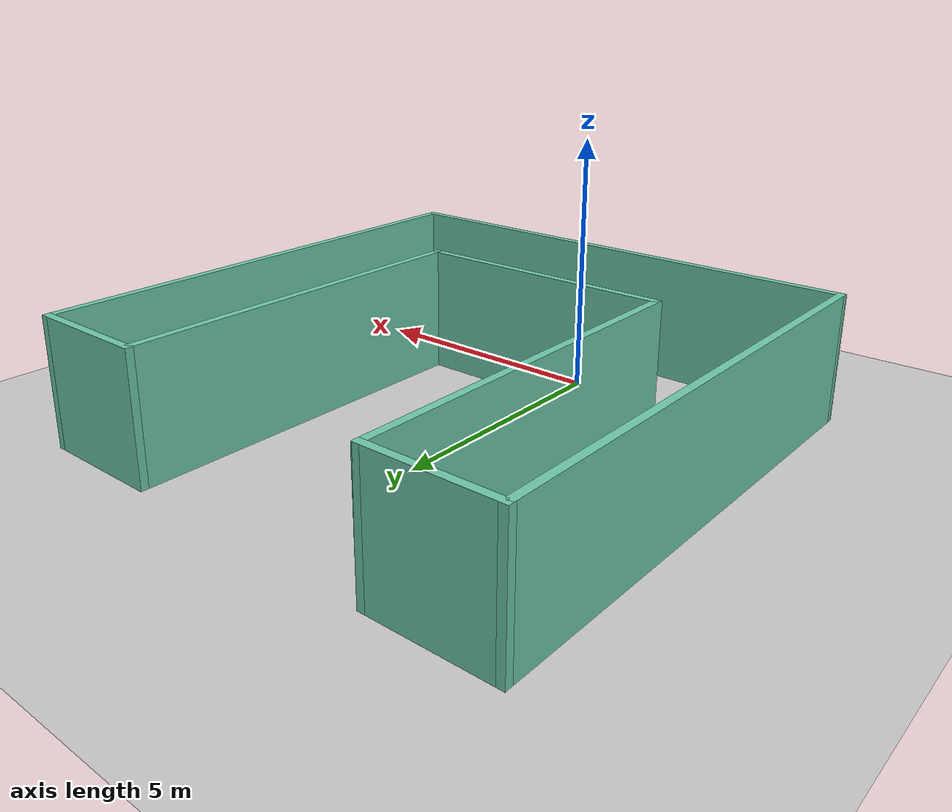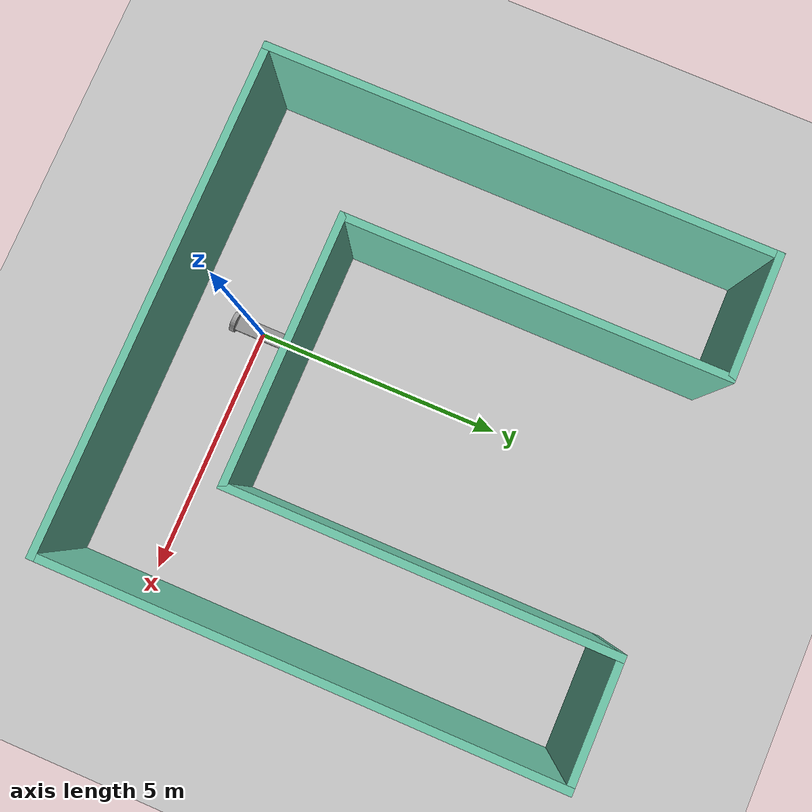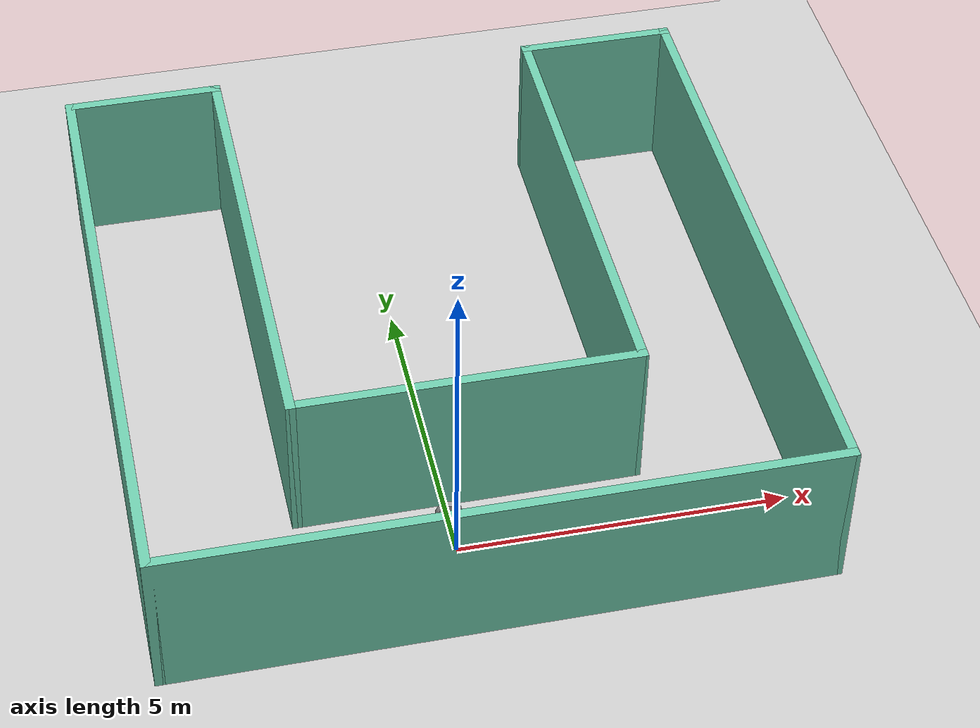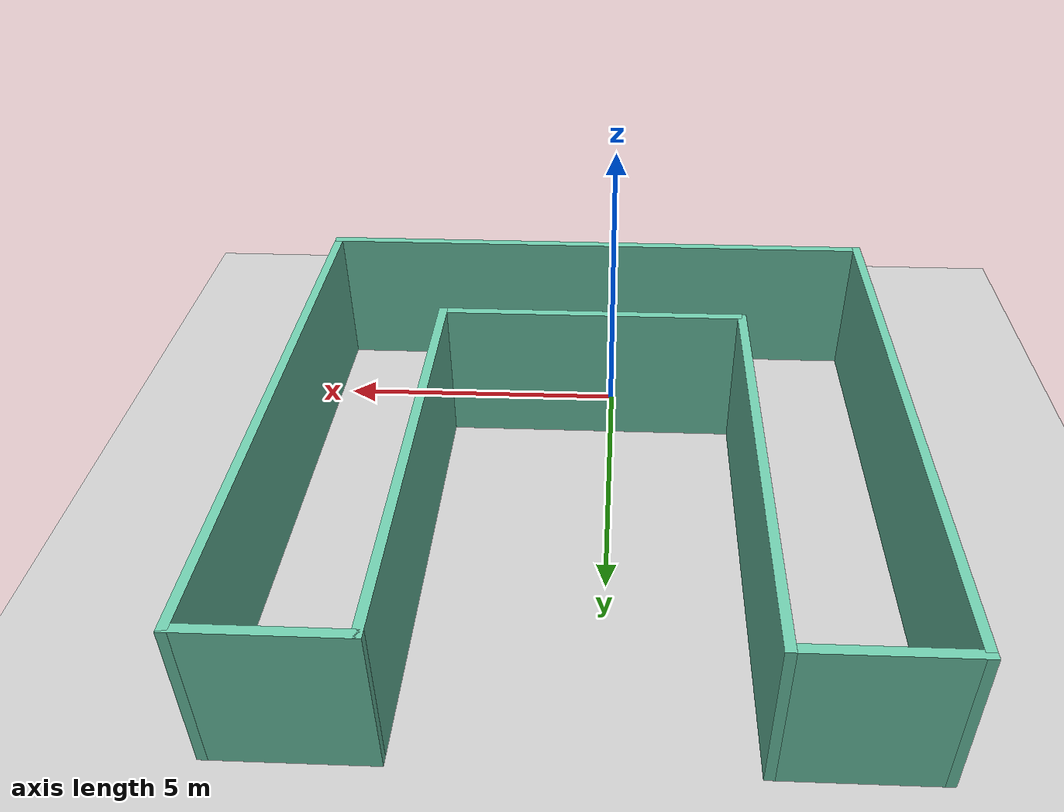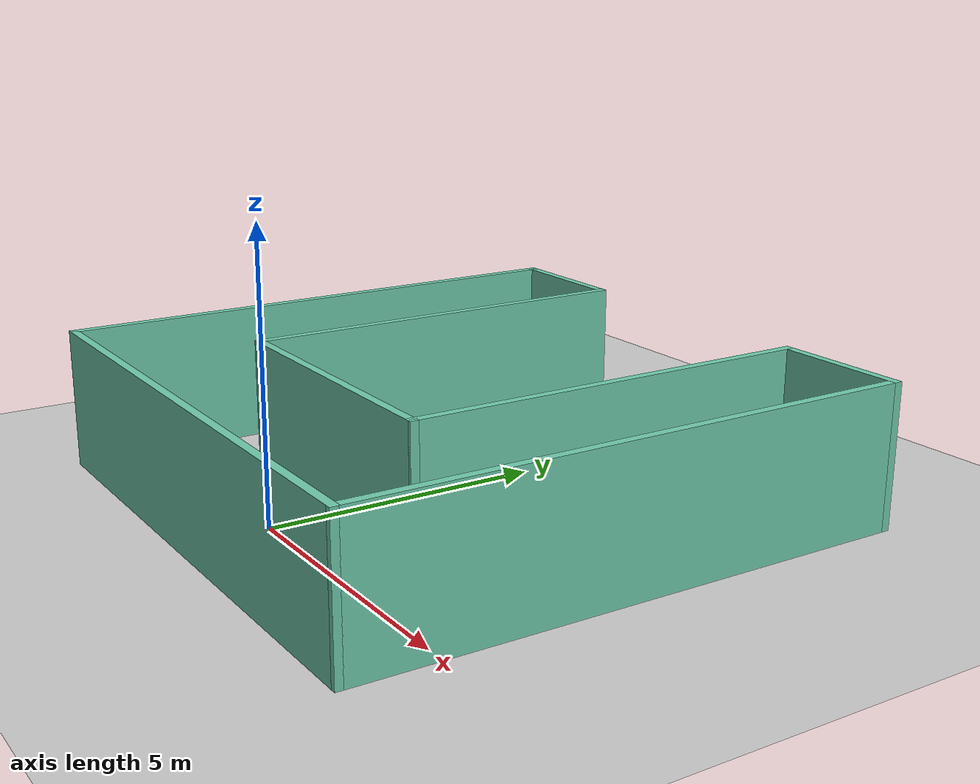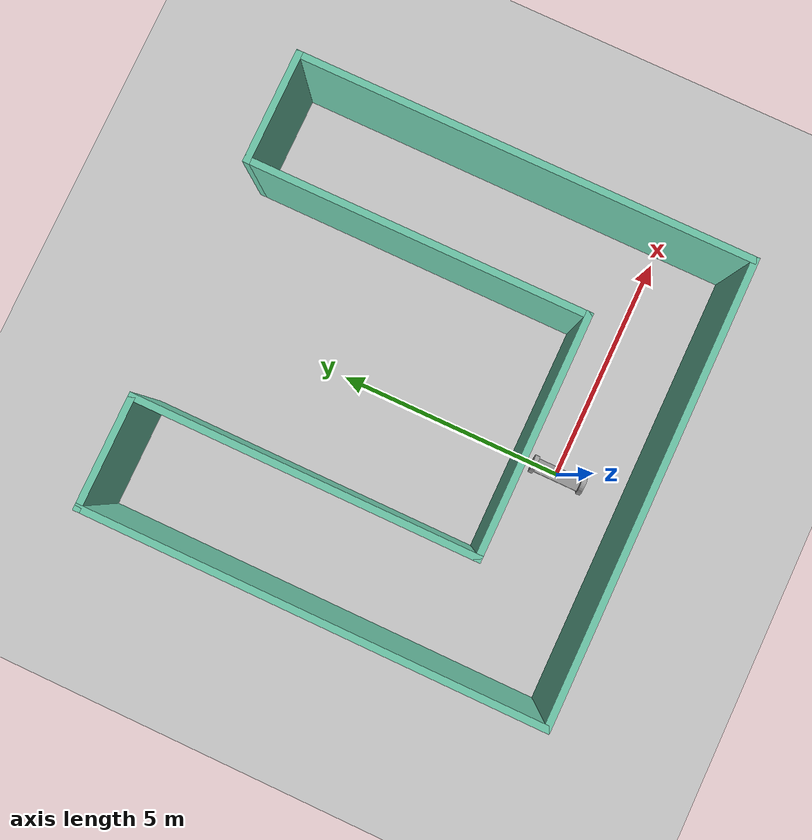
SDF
<sdf version="1.6">
 <world name="default">
  <plugin name="hello" filename="libhello.so"/>
  <light name="sun" type="directional">
   <pose>0 0 10 0 -0 0</pose>
   <diffuse>0.8 0.8 0.8 1</diffuse>
   <specular>0.1 0.1 0.1 1</specular>
   <attenuation>
    <range>1000</range>
    <constant>0.9</constant>
    <linear>0.01</linear>
    <quadratic>0.001</quadratic>
   </attenuation>
   <direction>-0.5 0.5 -1</direction>
  </light>
  <model name="ground_plane">
   <static>1</static>
   <link name="link">
    <collision name="collision">
     <geometry><plane><normal>0 0 1</normal><size>100 100</size></plane></geometry>
     <surface><friction><ode><mu>100</mu><mu2>50</mu2></ode></friction></surface>
    </collision>
    <visual name="visual">
     <cast_shadows>0</cast_shadows>
     <geometry><plane><normal>0 0 1</normal><size>100 100</size></plane></geometry>
     <material>
      <script><uri>file://media/materials/scripts/gazebo.material</uri><name>Gazebo/Grey</name></script>
     </material>
    </visual>
   </link>
  </model>
  <gravity>0 0 -9.8</gravity>
  <magnetic_field>6e-06 2.3e-05 -4.2e-05</magnetic_field>
  <atmosphere type="adiabatic"/>
  <physics name="default_physics" default="0" type="ode">
   <max_step_size>0.001</max_step_size>
   <real_time_factor>1</real_time_factor>
   <real_time_update_rate>1000</real_time_update_rate>
  </physics>
  <scene><ambient>0.4 0.4 0.4 1</ambient><background>0.7 0.7 0.7 1</background><shadows>1</shadows></scene>
  <spherical_coordinates>
   <surface_model>EARTH_WGS84</surface_model>
   <latitude_deg>0</latitude_deg>
   <longitude_deg>0</longitude_deg>
   <elevation>0</elevation>
   <heading_deg>0</heading_deg>
  </spherical_coordinates>
  <model name="robot">
   <link name="link_0">
    <pose>0 0 0.2 0 -0 0</pose>
    <inertial>
     <mass>1</mass>
     <inertia>
      <ixx>0.166667</ixx>
      <ixy>0</ixy>
      <ixz>0</ixz>
      <iyy>0.166667</iyy>
      <iyz>0</iyz>
      <izz>0.166667</izz>
     </inertia>
    </inertial>
    <visual name="visual">
     <geometry><box><size>0.3 1 0.1</size></box></geometry>
     <material>
      <lighting>1</lighting>
      <script><uri>file://media/materials/scripts/gazebo.material</uri><name>Gazebo/Grey</name></script>
      <ambient>0.3 0.3 0.3 1</ambient>
      <diffuse>0.7 0.7 0.7 1</diffuse>
      <specular>0.01 0.01 0.01 1</specular>
      <emissive>0 0 0 1</emissive>
      <shader type="vertex"><normal_map>__default__</normal_map></shader>
     </material>
    </visual>
    <collision name="collision">
     <geometry><box><size>0.3 1 0.1</size></box></geometry>
     <surface>
      <friction>
       <ode><mu>1</mu><mu2>1</mu2><fdir1>0 0 0</fdir1><slip1>0</slip1><slip2>0</slip2></ode>
       <torsional>
        <coefficient>1</coefficient>
        <patch_radius>0</patch_radius>
        <surface_radius>0</surface_radius>
        <use_patch_radius>1</use_patch_radius>
        <ode><slip>0</slip></ode>
       </torsional>
      </friction>
      <bounce><restitution_coefficient>0</restitution_coefficient><threshold>1e+06</threshold></bounce>
      <contact>
       <collide_without_contact>0</collide_without_contact>
       <collide_without_contact_bitmask>1</collide_without_contact_bitmask>
       <collide_bitmask>1</collide_bitmask>
       <ode>
        <soft_cfm>0</soft_cfm>
        <soft_erp>0.2</soft_erp>
        <kp>1e+13</kp>
        <kd>1</kd>
        <max_vel>0.01</max_vel>
        <min_depth>0</min_depth>
       </ode>
       <bullet>
        <split_impulse>1</split_impulse>
        <split_impulse_penetration_threshold>-0.01</split_impulse_penetration_threshold>
        <soft_cfm>0</soft_cfm>
        <soft_erp>0.2</soft_erp>
        <kp>1e+13</kp>
        <kd>1</kd>
       </bullet>
      </contact>
     </surface>
    </collision>
   </link>
   <link name="link_1">
    <pose>0 -0.550019 0.2 1.5707 -0 0</pose>
    <inertial>
     <mass>1</mass>
     <inertia><ixx>0.145833</ixx><ixy>0</ixy><ixz>0</ixz><iyy>0.145833</iyy><iyz>0</iyz><izz>0.125</izz></inertia>
    </inertial>
    <visual name="visual">
     <geometry><cylinder><radius>0.2</radius><length>0.1</length></cylinder></geometry>
     <material>
      <lighting>1</lighting>
      <script><uri>file://media/materials/scripts/gazebo.material</uri><name>Gazebo/Grey</name></script>
      <ambient>0.3 0.3 0.3 1</ambient>
      <diffuse>0.7 0.7 0.7 1</diffuse>
      <specular>0.01 0.01 0.01 1</specular>
      <emissive>0 0 0 1</emissive>
      <shader type="vertex"><normal_map>__default__</normal_map></shader>
     </material>
    </visual>
    <collision name="collision">
     <geometry><cylinder><radius>0.2</radius><length>0.1</length></cylinder></geometry>
     <surface>
      <friction>
       <ode><mu>1</mu><mu2>1</mu2><fdir1>0 0 0</fdir1><slip1>0</slip1><slip2>0</slip2></ode>
       <torsional>
        <coefficient>1</coefficient>
        <patch_radius>0</patch_radius>
        <surface_radius>0</surface_radius>
        <use_patch_radius>1</use_patch_radius>
        <ode><slip>0</slip></ode>
       </torsional>
      </friction>
      <bounce><restitution_coefficient>0</restitution_coefficient><threshold>1e+06</threshold></bounce>
      <contact>
       <collide_without_contact>0</collide_without_contact>
       <collide_without_contact_bitmask>1</collide_without_contact_bitmask>
       <collide_bitmask>1</collide_bitmask>
       <ode>
        <soft_cfm>0</soft_cfm>
        <soft_erp>0.2</soft_erp>
        <kp>1e+13</kp>
        <kd>1</kd>
        <max_vel>0.01</max_vel>
        <min_depth>0</min_depth>
       </ode>
       <bullet>
        <split_impulse>1</split_impulse>
        <split_impulse_penetration_threshold>-0.01</split_impulse_penetration_threshold>
        <soft_cfm>0</soft_cfm>
        <soft_erp>0.2</soft_erp>
        <kp>1e+13</kp>
        <kd>1</kd>
       </bullet>
      </contact>
     </surface>
    </collision>
   </link>
   <link name="link_1_clone">
    <pose>0 0.550019 0.2 1.5707 -0 0</pose>
    <inertial>
     <mass>1</mass>
     <inertia><ixx>0.145833</ixx><ixy>0</ixy><ixz>0</ixz><iyy>0.145833</iyy><iyz>0</iyz><izz>0.125</izz></inertia>
    </inertial>
    <visual name="visual">
     <geometry><cylinder><radius>0.2</radius><length>0.1</length></cylinder></geometry>
     <material>
      <lighting>1</lighting>
      <script><uri>file://media/materials/scripts/gazebo.material</uri><name>Gazebo/Grey</name></script>
      <ambient>0.3 0.3 0.3 1</ambient>
      <diffuse>0.7 0.7 0.7 1</diffuse>
      <specular>0.01 0.01 0.01 1</specular>
      <emissive>0 0 0 1</emissive>
      <shader type="vertex"><normal_map>__default__</normal_map></shader>
     </material>
    </visual>
    <collision name="collision">
     <geometry><cylinder><radius>0.2</radius><length>0.1</length></cylinder></geometry>
     <surface>
      <friction>
       <ode><mu>1</mu><mu2>1</mu2><fdir1>0 0 0</fdir1><slip1>0</slip1><slip2>0</slip2></ode>
       <torsional>
        <coefficient>1</coefficient>
        <patch_radius>0</patch_radius>
        <surface_radius>0</surface_radius>
        <use_patch_radius>1</use_patch_radius>
        <ode><slip>0</slip></ode>
       </torsional>
      </friction>
      <bounce><restitution_coefficient>0</restitution_coefficient><threshold>1e+06</threshold></bounce>
      <contact>
       <collide_without_contact>0</collide_without_contact>
       <collide_without_contact_bitmask>1</collide_without_contact_bitmask>
       <collide_bitmask>1</collide_bitmask>
       <ode>
        <soft_cfm>0</soft_cfm>
        <soft_erp>0.2</soft_erp>
        <kp>1e+13</kp>
        <kd>1</kd>
        <max_vel>0.01</max_vel>
        <min_depth>0</min_depth>
       </ode>
       <bullet>
        <split_impulse>1</split_impulse>
        <split_impulse_penetration_threshold>-0.01</split_impulse_penetration_threshold>
        <soft_cfm>0</soft_cfm>
        <soft_erp>0.2</soft_erp>
        <kp>1e+13</kp>
        <kd>1</kd>
       </bullet>
      </contact>
     </surface>
    </collision>
   </link>
   <joint name="link_0_JOINT_0" type="revolute">
    <parent>link_0</parent>
    <child>link_1</child>
    <axis>
     <xyz>0 0 1</xyz>
     <use_parent_model_frame>0</use_parent_model_frame>
     <limit>
      <lower>-1.79769e+308</lower>
      <upper>1.79769e+308</upper>
      <effort>-1</effort>
      <velocity>-1</velocity>
     </limit>
     <dynamics>
      <spring_reference>0</spring_reference>
      <spring_stiffness>0</spring_stiffness>
      <damping>0</damping>
     </dynamics>
    </axis>
    <physics>
     <ode><limit><cfm>0</cfm><erp>0.2</erp></limit><suspension><cfm>0</cfm><erp>0.2</erp></suspension></ode>
    </physics>
   </joint>
   <joint name="link_0_JOINT_1" type="revolute">
    <parent>link_0</parent>
    <child>link_1_clone</child>
    <axis>
     <xyz>0 0 1</xyz>
     <use_parent_model_frame>0</use_parent_model_frame>
     <limit>
      <lower>-1.79769e+308</lower>
      <upper>1.79769e+308</upper>
      <effort>-1</effort>
      <velocity>-1</velocity>
     </limit>
     <dynamics>
      <spring_reference>0</spring_reference>
      <spring_stiffness>0</spring_stiffness>
      <damping>0</damping>
     </dynamics>
    </axis>
    <physics>
     <ode><limit><cfm>0</cfm><erp>0.2</erp></limit><suspension><cfm>0</cfm><erp>0.2</erp></suspension></ode>
    </physics>
   </joint>
   <static>0</static>
   <pose>0 0 5e-06 0 -0 0</pose>
  </model>
  <model name="building">
   <pose>0.363544 3.40055 0 0 -0 0</pose>
   <link name="Wall_17">
    <collision name="Wall_17_Collision">
     <geometry><box><size>10 0.15 2.5</size></box></geometry>
     <pose>0 0 1.25 0 -0 0</pose>
    </collision>
    <visual name="Wall_17_Visual">
     <pose>0 0 1.25 0 -0 0</pose>
     <geometry><box><size>10 0.15 2.5</size></box></geometry>
     <material>
      <script><uri>file://media/materials/scripts/gazebo.material</uri><name>Gazebo/Grey</name></script>
      <ambient>0.435294 0.796078 0.67451 1</ambient>
     </material>
    </visual>
    <pose>-4.92498 -0.000237 0 0 0 -1.5708</pose>
   </link>
   <link name="Wall_20">
    <collision name="Wall_20_Collision">
     <geometry><box><size>2.5 0.15 2.5</size></box></geometry>
     <pose>0 0 1.25 0 -0 0</pose>
    </collision>
    <visual name="Wall_20_Visual">
     <pose>0 0 1.25 0 -0 0</pose>
     <geometry><box><size>2.5 0.15 2.5</size></box></geometry>
     <material>
      <script><uri>file://media/materials/scripts/gazebo.material</uri><name>Gazebo/Grey</name></script>
      <ambient>0.435294 0.796078 0.67451 1</ambient>
     </material>
    </visual>
    <pose>-3.74998 4.92476 0 0 -0 0</pose>
   </link>
   <link name="Wall_22">
    <collision name="Wall_22_Collision">
     <geometry><box><size>7.5 0.15 2.5</size></box></geometry>
     <pose>0 0 1.25 0 -0 0</pose>
    </collision>
    <visual name="Wall_22_Visual">
     <pose>0 0 1.25 0 -0 0</pose>
     <geometry><box><size>7.5 0.15 2.5</size></box></geometry>
     <material>
      <script><uri>file://media/materials/scripts/gazebo.material</uri><name>Gazebo/Grey</name></script>
      <ambient>0.435294 0.796078 0.67451 1</ambient>
     </material>
    </visual>
    <pose>-2.57498 1.24976 0 0 0 -1.5708</pose>
   </link>
   <link name="Wall_25">
    <collision name="Wall_25_Collision">
     <geometry><box><size>10 0.15 2.5</size></box></geometry>
     <pose>0 0 1.25 0 -0 0</pose>
    </collision>
    <visual name="Wall_25_Visual">
     <pose>0 0 1.25 0 -0 0</pose>
     <geometry><box><size>10 0.15 2.5</size></box></geometry>
     <material>
      <script><uri>file://media/materials/scripts/gazebo.material</uri><name>Gazebo/Grey</name></script>
      <ambient>0.435294 0.796078 0.67451 1</ambient>
     </material>
    </visual>
    <pose>0 -4.925 0 0 -0 4.9e-05</pose>
   </link>
   <link name="Wall_27">
    <collision name="Wall_27_Collision">
     <geometry><box><size>10 0.15 2.5</size></box></geometry>
     <pose>0 0 1.25 0 -0 0</pose>
    </collision>
    <visual name="Wall_27_Visual">
     <pose>0 0 1.25 0 -0 0</pose>
     <geometry><box><size>10 0.15 2.5</size></box></geometry>
     <material>
      <script><uri>file://media/materials/scripts/gazebo.material</uri><name>Gazebo/Grey</name></script>
      <ambient>0.435294 0.796078 0.67451 1</ambient>
     </material>
    </visual>
    <pose>4.92498 0.000241 0 0 -0 1.5708</pose>
   </link>
   <link name="Wall_29">
    <collision name="Wall_29_Collision">
     <geometry><box><size>2.5 0.15 2.5</size></box></geometry>
     <pose>0 0 1.25 0 -0 0</pose>
    </collision>
    <visual name="Wall_29_Visual">
     <pose>0 0 1.25 0 -0 0</pose>
     <geometry><box><size>2.5 0.15 2.5</size></box></geometry>
     <material>
      <script><uri>file://media/materials/scripts/gazebo.material</uri><name>Gazebo/Grey</name></script>
      <ambient>0.435294 0.796078 0.67451 1</ambient>
     </material>
    </visual>
    <pose>3.74998 4.92524 0 0 -0 3.14159</pose>
   </link>
   <link name="Wall_30">
    <collision name="Wall_30_Collision">
     <geometry><box><size>7.5 0.15 2.5</size></box></geometry>
     <pose>0 0 1.25 0 -0 0</pose>
    </collision>
    <visual name="Wall_30_Visual">
     <pose>0 0 1.25 0 -0 0</pose>
     <geometry><box><size>7.5 0.15 2.5</size></box></geometry>
     <material>
      <script><uri>file://media/materials/scripts/gazebo.material</uri><name>Gazebo/Grey</name></script>
      <ambient>0.435294 0.796078 0.67451 1</ambient>
     </material>
    </visual>
    <pose>2.57498 1.25024 0 0 0 -1.5708</pose>
   </link>
   <link name="Wall_31">
    <collision name="Wall_31_Collision">
     <geometry><box><size>5.29996 0.15 2.5</size></box></geometry>
     <pose>0 0 1.25 0 -0 0</pose>
    </collision>
    <visual name="Wall_31_Visual">
     <pose>0 0 1.25 0 -0 0</pose>
     <geometry><box><size>5.29996 0.15 2.5</size></box></geometry>
     <material>
      <script><uri>file://media/materials/scripts/gazebo.material</uri><name>Gazebo/Grey</name></script>
      <ambient>0.435294 0.796078 0.67451 1</ambient>
     </material>
    </visual>
    <pose>0 -2.425 0 0 0 -3.1415</pose>
   </link>
   <static>1</static>
  </model>
 </world>
</sdf>
